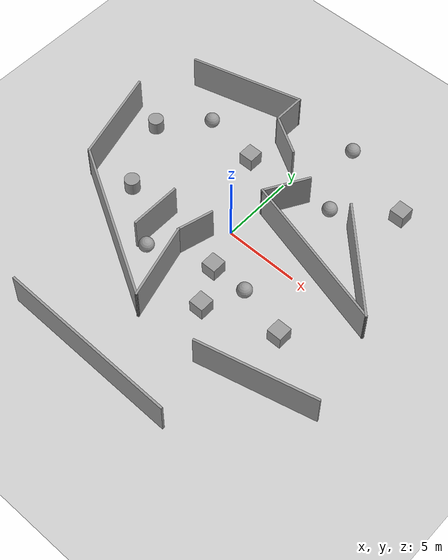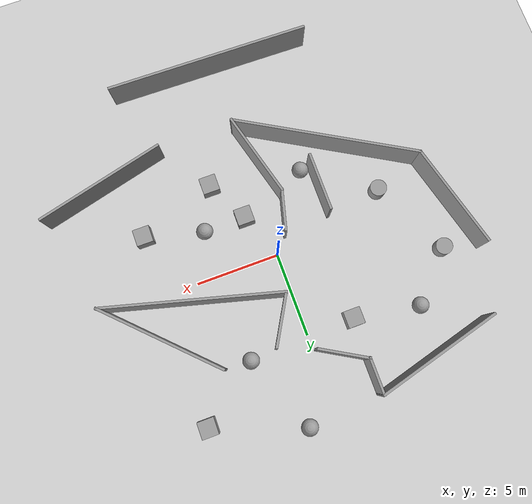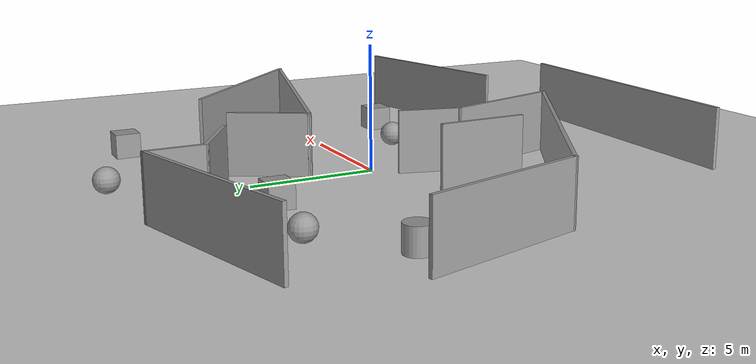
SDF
<sdf version="1.7">
 <world name="default">
  <light name="sun" type="directional">
   <pose>0 0 10 0 -0 0</pose>
   <diffuse>0.8 0.8 0.8 1</diffuse>
   <specular>0.2 0.2 0.2 1</specular>
   <attenuation>
    <range>1000</range>
    <constant>0.9</constant>
    <linear>0.01</linear>
    <quadratic>0.001</quadratic>
   </attenuation>
   <direction>-0.5 0.1 -0.9</direction>
   <spot><inner_angle>0</inner_angle><outer_angle>0</outer_angle><falloff>0</falloff></spot>
  </light>
  <model name="ground_plane">
   <static>1</static>
   <link name="link">
    <collision name="collision">
     <geometry><plane><normal>0 0 1</normal><size>100 100</size></plane></geometry>
     <surface>
      <contact><collide_bitmask>65535</collide_bitmask></contact>
      <friction><ode><mu>100</mu><mu2>50</mu2></ode></friction>
     </surface>
    </collision>
    <visual name="visual">
     <cast_shadows>0</cast_shadows>
     <geometry><plane><normal>0 0 1</normal><size>100 100</size></plane></geometry>
     <material>
      <script><uri>file://media/materials/scripts/gazebo.material</uri><name>Gazebo/Grey</name></script>
     </material>
    </visual>
   </link>
  </model>
  <physics type="ode">
   <max_step_size>0.01</max_step_size>
   <real_time_factor>1</real_time_factor>
   <real_time_update_rate>100</real_time_update_rate>
  </physics>
  <gravity>0 0 -9.8</gravity>
  <magnetic_field>6e-06 2.3e-05 -4.2e-05</magnetic_field>
  <atmosphere type="adiabatic"/>
  <scene><ambient>0.4 0.4 0.4 1</ambient><background>0.7 0.7 0.7 1</background><shadows>1</shadows></scene>
  <spherical_coordinates>
   <surface_model>EARTH_WGS84</surface_model>
   <latitude_deg>0</latitude_deg>
   <longitude_deg>0</longitude_deg>
   <elevation>0</elevation>
   <heading_deg>0</heading_deg>
  </spherical_coordinates>
  <model name="3_walls">
   <pose>3.021 -9.16419 0 0 -0 -0.283185</pose>
   <link name="Wall_0">
    <collision name="Wall_0_Collision">
     <geometry><box><size>3.5 0.15 2.5</size></box></geometry>
     <pose>0 0 1.25 0 -0 0</pose>
    </collision>
    <visual name="Wall_0_Visual">
     <pose>0 0 1.25 0 -0 0</pose>
     <geometry><box><size>3.5 0.15 2.5</size></box></geometry>
     <material>
      <script><uri>file://media/materials/scripts/gazebo.material</uri><name>Gazebo/Grey</name></script>
      <ambient>1 1 1 1</ambient>
     </material>
     <meta><layer>0</layer></meta>
    </visual>
    <pose>-8.14898 4.1995 0 0 -0 -1.28761</pose>
   </link>
   <link name="Wall_2">
    <collision name="Wall_2_Collision">
     <geometry><box><size>12.25 0.15 2.5</size></box></geometry>
     <pose>0 0 1.25 0 -0 0</pose>
    </collision>
    <visual name="Wall_2_Visual">
     <pose>0 0 1.25 0 -0 0</pose>
     <geometry><box><size>12.25 0.15 2.5</size></box></geometry>
     <material>
      <script><uri>file://media/materials/scripts/gazebo.material</uri><name>Gazebo/Grey</name></script>
      <ambient>1 1 1 1</ambient>
     </material>
     <meta><layer>0</layer></meta>
    </visual>
    <pose>-2.05479 -3.80813 0 0 -0 0.261799</pose>
   </link>
   <link name="Wall_4">
    <collision name="Wall_4_Collision">
     <geometry><box><size>8 0.15 2.5</size></box></geometry>
     <pose>0 0 1.25 0 -0 0</pose>
    </collision>
    <visual name="Wall_4_Visual">
     <pose>0 0 1.25 0 -0 0</pose>
     <geometry><box><size>8 0.15 2.5</size></box></geometry>
     <material>
      <script><uri>file://media/materials/scripts/gazebo.material</uri><name>Gazebo/Grey</name></script>
      <ambient>1 1 1 1</ambient>
     </material>
     <meta><layer>0</layer></meta>
    </visual>
    <pose>4.48889 3.40089 0 0 -0 -2.61799</pose>
   </link>
   <static>1</static>
  </model>
  <model name="test2">
   <pose>-0.337317 0.69639 0 0 -0 0</pose>
   <link name="Wall_0">
    <collision name="Wall_0_Collision">
     <geometry><box><size>2.5 0.15 2.5</size></box></geometry>
     <pose>0 0 1.25 0 -0 0</pose>
    </collision>
    <visual name="Wall_0_Visual">
     <pose>0 0 1.25 0 -0 0</pose>
     <geometry><box><size>2.5 0.15 2.5</size></box></geometry>
     <material>
      <script><uri>file://media/materials/scripts/gazebo.material</uri><name>Gazebo/Grey</name></script>
      <ambient>1 1 1 1</ambient>
     </material>
     <meta><layer>0</layer></meta>
    </visual>
    <pose>-0.756796 -2.72135 0 0 -0 -1.8326</pose>
   </link>
   <link name="Wall_1">
    <collision name="Wall_1_Collision">
     <geometry><box><size>5.25 0.15 2.5</size></box></geometry>
     <pose>0 0 1.25 0 -0 0</pose>
    </collision>
    <visual name="Wall_1_Visual">
     <pose>0 0 1.25 0 -0 0</pose>
     <geometry><box><size>5.25 0.15 2.5</size></box></geometry>
     <material>
      <script><uri>file://media/materials/scripts/gazebo.material</uri><name>Gazebo/Grey</name></script>
      <ambient>1 1 1 1</ambient>
     </material>
     <meta><layer>0</layer></meta>
    </visual>
    <pose>-0.40092 -6.31943 0 0 -0 -1.309</pose>
   </link>
   <link name="Wall_10">
    <collision name="Wall_10_Collision">
     <geometry><box><size>2.25 0.15 2.5</size></box></geometry>
     <pose>0 0 1.25 0 -0 0</pose>
    </collision>
    <visual name="Wall_10_Visual">
     <pose>0 0 1.25 0 -0 0</pose>
     <geometry><box><size>2.25 0.15 2.5</size></box></geometry>
     <material>
      <script><uri>file://media/materials/scripts/gazebo.material</uri><name>Gazebo/Grey</name></script>
      <ambient>1 1 1 1</ambient>
     </material>
     <meta><layer>0</layer></meta>
    </visual>
    <pose>-2.29165 7.74313 0 0 -0 -1.5708</pose>
   </link>
   <link name="Wall_11">
    <collision name="Wall_11_Collision">
     <geometry><box><size>3 0.15 2.5</size></box></geometry>
     <pose>0 0 1.25 0 -0 0</pose>
    </collision>
    <visual name="Wall_11_Visual">
     <pose>0 0 1.25 0 -0 0</pose>
     <geometry><box><size>3 0.15 2.5</size></box></geometry>
     <material>
      <script><uri>file://media/materials/scripts/gazebo.material</uri><name>Gazebo/Grey</name></script>
      <ambient>1 1 1 1</ambient>
     </material>
     <meta><layer>0</layer></meta>
    </visual>
    <pose>-1.05756 5.98064 0 0 -0 -0.523599</pose>
   </link>
   <link name="Wall_2">
    <collision name="Wall_2_Collision">
     <geometry><box><size>11.25 0.15 2.5</size></box></geometry>
     <pose>0 0 1.25 0 -0 0</pose>
    </collision>
    <visual name="Wall_2_Visual">
     <pose>0 0 1.25 0 -0 0</pose>
     <geometry><box><size>11.25 0.15 2.5</size></box></geometry>
     <material>
      <script><uri>file://media/materials/scripts/gazebo.material</uri><name>Gazebo/Grey</name></script>
      <ambient>1 1 1 1</ambient>
     </material>
     <meta><layer>0</layer></meta>
    </visual>
    <pose>-4.54737 -6.00754 0 0 -0 2.61799</pose>
   </link>
   <link name="Wall_3">
    <collision name="Wall_3_Collision">
     <geometry><box><size>6.5 0.15 2.5</size></box></geometry>
     <pose>0 0 1.25 0 -0 0</pose>
    </collision>
    <visual name="Wall_3_Visual">
     <pose>0 0 1.25 0 -0 0</pose>
     <geometry><box><size>6.5 0.15 2.5</size></box></geometry>
     <material>
      <script><uri>file://media/materials/scripts/gazebo.material</uri><name>Gazebo/Grey</name></script>
      <ambient>1 1 1 1</ambient>
     </material>
     <meta><layer>0</layer></meta>
    </visual>
    <pose>-10.1756 -0.165723 0 0 -0 1.8326</pose>
   </link>
   <link name="Wall_5">
    <collision name="Wall_5_Collision">
     <geometry><box><size>8 0.15 2.5</size></box></geometry>
     <pose>0 0 1.25 0 -0 0</pose>
    </collision>
    <visual name="Wall_5_Visual">
     <pose>0 0 1.25 0 -0 0</pose>
     <geometry><box><size>8 0.15 2.5</size></box></geometry>
     <material>
      <script><uri>file://media/materials/scripts/gazebo.material</uri><name>Gazebo/Grey</name></script>
      <ambient>1 1 1 1</ambient>
     </material>
     <meta><layer>0</layer></meta>
    </visual>
    <pose>8.20771 1.75072 0 0 -0 -0.785398</pose>
   </link>
   <link name="Wall_6">
    <collision name="Wall_6_Collision">
     <geometry><box><size>10.75 0.15 2.5</size></box></geometry>
     <pose>0 0 1.25 0 -0 0</pose>
    </collision>
    <visual name="Wall_6_Visual">
     <pose>0 0 1.25 0 -0 0</pose>
     <geometry><box><size>10.75 0.15 2.5</size></box></geometry>
     <material>
      <script><uri>file://media/materials/scripts/gazebo.material</uri><name>Gazebo/Grey</name></script>
      <ambient>1 1 1 1</ambient>
     </material>
     <meta><layer>0</layer></meta>
    </visual>
    <pose>5.8637 0.347063 0 0 -0 2.87979</pose>
   </link>
   <link name="Wall_7">
    <collision name="Wall_7_Collision">
     <geometry><box><size>3.25 0.15 2.5</size></box></geometry>
     <pose>0 0 1.25 0 -0 0</pose>
    </collision>
    <visual name="Wall_7_Visual">
     <pose>0 0 1.25 0 -0 0</pose>
     <geometry><box><size>3.25 0.15 2.5</size></box></geometry>
     <material>
      <script><uri>file://media/materials/scripts/gazebo.material</uri><name>Gazebo/Grey</name></script>
      <ambient>1 1 1 1</ambient>
     </material>
     <meta><layer>0</layer></meta>
    </visual>
    <pose>1.51929 3.06114 0 0 -0 1.0472</pose>
   </link>
   <link name="Wall_9">
    <collision name="Wall_9_Collision">
     <geometry><box><size>7.75 0.15 2.5</size></box></geometry>
     <pose>0 0 1.25 0 -0 0</pose>
    </collision>
    <visual name="Wall_9_Visual">
     <pose>0 0 1.25 0 -0 0</pose>
     <geometry><box><size>7.75 0.15 2.5</size></box></geometry>
     <material>
      <script><uri>file://media/materials/scripts/gazebo.material</uri><name>Gazebo/Grey</name></script>
      <ambient>1 1 1 1</ambient>
     </material>
     <meta><layer>0</layer></meta>
    </visual>
    <pose>-5.96216 7.80962 0 0 -0 0.261799</pose>
   </link>
   <static>1</static>
  </model>
  <model name="unit_sphere">
   <pose>-6.76232 5.65342 0.5 0 -0 0</pose>
   <link name="link">
    <inertial>
     <mass>1</mass>
     <inertia><ixx>0.1</ixx><ixy>0</ixy><ixz>0</ixz><iyy>0.1</iyy><iyz>0</iyz><izz>0.1</izz></inertia>
    </inertial>
    <collision name="collision"><geometry><sphere><radius>0.5</radius></sphere></geometry></collision>
    <visual name="visual">
     <geometry><sphere><radius>0.5</radius></sphere></geometry>
     <material>
      <script><name>Gazebo/Grey</name><uri>file://media/materials/scripts/gazebo.material</uri></script>
     </material>
    </visual>
   </link>
  </model>
  <model name="unit_cylinder">
   <pose>-6.96388 -1.61911 0.499789 0.000422 0.000422 -1e-05</pose>
   <link name="link">
    <inertial>
     <mass>1</mass>
     <inertia><ixx>0.145833</ixx><ixy>0</ixy><ixz>0</ixz><iyy>0.145833</iyy><iyz>0</iyz><izz>0.125</izz></inertia>
    </inertial>
    <collision name="collision">
     <geometry><cylinder><radius>0.5</radius><length>1</length></cylinder></geometry>
    </collision>
    <visual name="visual">
     <geometry><cylinder><radius>0.5</radius><length>1</length></cylinder></geometry>
     <material>
      <script><name>Gazebo/Grey</name><uri>file://media/materials/scripts/gazebo.material</uri></script>
     </material>
    </visual>
   </link>
  </model>
  <model name="unit_box">
   <pose>1.0901 -2.77532 0.49907 -0.0001 0 0</pose>
   <link name="link">
    <inertial>
     <mass>1</mass>
     <inertia>
      <ixx>0.166667</ixx>
      <ixy>0</ixy>
      <ixz>0</ixz>
      <iyy>0.166667</iyy>
      <iyz>0</iyz>
      <izz>0.166667</izz>
     </inertia>
    </inertial>
    <collision name="collision"><geometry><box><size>1 1 1</size></box></geometry></collision>
    <visual name="visual">
     <geometry><box><size>1 1 1</size></box></geometry>
     <material>
      <script><name>Gazebo/Grey</name><uri>file://media/materials/scripts/gazebo.material</uri></script>
     </material>
    </visual>
   </link>
  </model>
  <model name="unit_sphere_0">
   <pose>3.55594 5.26329 0.5 0 -0 0</pose>
   <link name="link">
    <inertial>
     <mass>1</mass>
     <inertia><ixx>0.1</ixx><ixy>0</ixy><ixz>0</ixz><iyy>0.1</iyy><iyz>0</iyz><izz>0.1</izz></inertia>
    </inertial>
    <collision name="collision"><geometry><sphere><radius>0.5</radius></sphere></geometry></collision>
    <visual name="visual">
     <geometry><sphere><radius>0.5</radius></sphere></geometry>
     <material>
      <script><name>Gazebo/Grey</name><uri>file://media/materials/scripts/gazebo.material</uri></script>
     </material>
    </visual>
   </link>
  </model>
  <model name="unit_box_0">
   <pose>-2.82264 5.00385 0.49907 -0.0001 0 0</pose>
   <link name="link">
    <inertial>
     <mass>1</mass>
     <inertia>
      <ixx>0.166667</ixx>
      <ixy>0</ixy>
      <ixz>0</ixz>
      <iyy>0.166667</iyy>
      <iyz>0</iyz>
      <izz>0.166667</izz>
     </inertia>
    </inertial>
    <collision name="collision"><geometry><box><size>1 1 1</size></box></geometry></collision>
    <visual name="visual">
     <geometry><box><size>1 1 1</size></box></geometry>
     <material>
      <script><name>Gazebo/Grey</name><uri>file://media/materials/scripts/gazebo.material</uri></script>
     </material>
    </visual>
   </link>
  </model>
  <model name="unit_cylinder_0">
   <pose>-9.27267 2.94828 0.499789 0.000422 0.000422 -6e-06</pose>
   <link name="link">
    <inertial>
     <mass>1</mass>
     <inertia><ixx>0.145833</ixx><ixy>0</ixy><ixz>0</ixz><iyy>0.145833</iyy><iyz>0</iyz><izz>0.125</izz></inertia>
    </inertial>
    <collision name="collision">
     <geometry><cylinder><radius>0.5</radius><length>1</length></cylinder></geometry>
    </collision>
    <visual name="visual">
     <geometry><cylinder><radius>0.5</radius><length>1</length></cylinder></geometry>
     <material>
      <script><name>Gazebo/Grey</name><uri>file://media/materials/scripts/gazebo.material</uri></script>
     </material>
    </visual>
   </link>
  </model>
  <model name="unit_box_1">
   <pose>7.0662 -3.65732 0.49907 -0.0001 0 0</pose>
   <link name="link">
    <inertial>
     <mass>1</mass>
     <inertia>
      <ixx>0.166667</ixx>
      <ixy>0</ixy>
      <ixz>0</ixz>
      <iyy>0.166667</iyy>
      <iyz>0</iyz>
      <izz>0.166667</izz>
     </inertia>
    </inertial>
    <collision name="collision"><geometry><box><size>1 1 1</size></box></geometry></collision>
    <visual name="visual">
     <geometry><box><size>1 1 1</size></box></geometry>
     <material>
      <script><name>Gazebo/Grey</name><uri>file://media/materials/scripts/gazebo.material</uri></script>
     </material>
    </visual>
   </link>
  </model>
  <model name="unit_sphere_1">
   <pose>3.58309 -2.7569 0.5 0 -0 0</pose>
   <link name="link">
    <inertial>
     <mass>1</mass>
     <inertia><ixx>0.1</ixx><ixy>0</ixy><ixz>0</ixz><iyy>0.1</iyy><iyz>0</iyz><izz>0.1</izz></inertia>
    </inertial>
    <collision name="collision"><geometry><sphere><radius>0.5</radius></sphere></geometry></collision>
    <visual name="visual">
     <geometry><sphere><radius>0.5</radius></sphere></geometry>
     <material>
      <script><name>Gazebo/Grey</name><uri>file://media/materials/scripts/gazebo.material</uri></script>
     </material>
    </visual>
   </link>
  </model>
  <model name="unit_box_2">
   <pose>2.39314 -5.26268 0.49907 -0.0001 0 0</pose>
   <link name="link">
    <inertial>
     <mass>1</mass>
     <inertia>
      <ixx>0.166667</ixx>
      <ixy>0</ixy>
      <ixz>0</ixz>
      <iyy>0.166667</iyy>
      <iyz>0</iyz>
      <izz>0.166667</izz>
     </inertia>
    </inertial>
    <collision name="collision"><geometry><box><size>1 1 1</size></box></geometry></collision>
    <visual name="visual">
     <geometry><box><size>1 1 1</size></box></geometry>
     <material>
      <script><name>Gazebo/Grey</name><uri>file://media/materials/scripts/gazebo.material</uri></script>
     </material>
    </visual>
   </link>
  </model>
  <model name="unit_sphere_2">
   <pose>-3.04606 -4.34551 0.5 3e-06 0.241472 1e-06</pose>
   <link name="link">
    <inertial>
     <mass>1</mass>
     <inertia><ixx>0.1</ixx><ixy>0</ixy><ixz>0</ixz><iyy>0.1</iyy><iyz>0</iyz><izz>0.1</izz></inertia>
    </inertial>
    <collision name="collision"><geometry><sphere><radius>0.5</radius></sphere></geometry></collision>
    <visual name="visual">
     <geometry><sphere><radius>0.5</radius></sphere></geometry>
     <material>
      <script><name>Gazebo/Grey</name><uri>file://media/materials/scripts/gazebo.material</uri></script>
     </material>
    </visual>
   </link>
  </model>
  <model name="unit_box_3">
   <pose>7.06577 7.92842 0.49907 -0.0001 0 0</pose>
   <link name="link">
    <inertial>
     <mass>1</mass>
     <inertia>
      <ixx>0.166667</ixx>
      <ixy>0</ixy>
      <ixz>0</ixz>
      <iyy>0.166667</iyy>
      <iyz>0</iyz>
      <izz>0.166667</izz>
     </inertia>
    </inertial>
    <collision name="collision"><geometry><box><size>1 1 1</size></box></geometry></collision>
    <visual name="visual">
     <geometry><box><size>1 1 1</size></box></geometry>
     <material>
      <script><name>Gazebo/Grey</name><uri>file://media/materials/scripts/gazebo.material</uri></script>
     </material>
    </visual>
   </link>
  </model>
  <model name="unit_sphere_3">
   <pose>1.69981 9.87268 0.5 0 -0 0</pose>
   <link name="link">
    <inertial>
     <mass>1</mass>
     <inertia><ixx>0.1</ixx><ixy>0</ixy><ixz>0</ixz><iyy>0.1</iyy><iyz>0</iyz><izz>0.1</izz></inertia>
    </inertial>
    <collision name="collision"><geometry><sphere><radius>0.5</radius></sphere></geometry></collision>
    <visual name="visual">
     <geometry><sphere><radius>0.5</radius></sphere></geometry>
     <material>
      <script><name>Gazebo/Grey</name><uri>file://media/materials/scripts/gazebo.material</uri></script>
     </material>
    </visual>
   </link>
  </model>
 </world>
</sdf>
